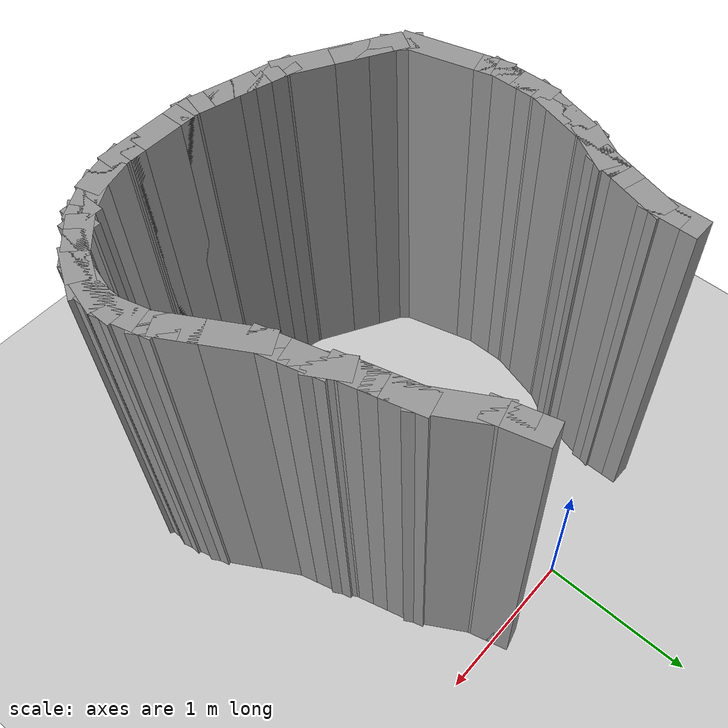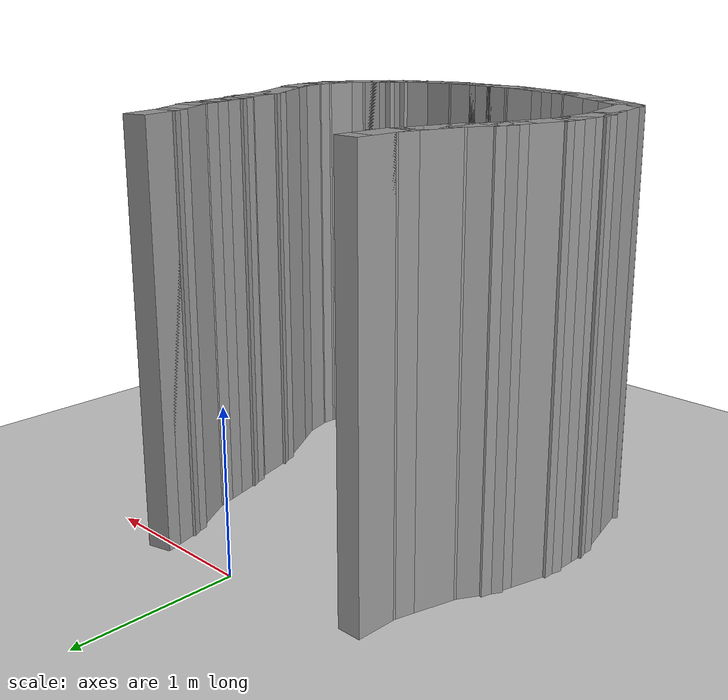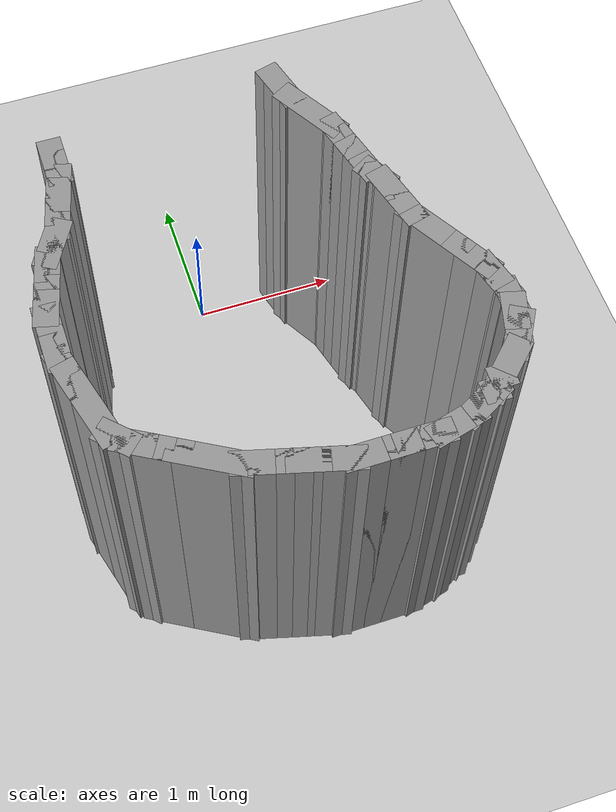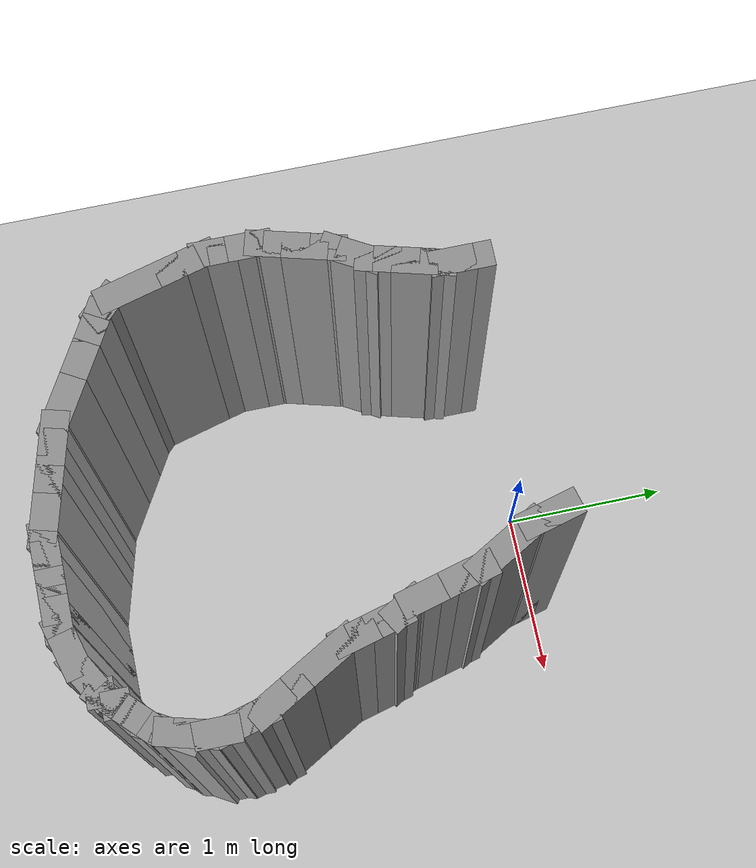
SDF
<sdf version="1.7">
 <world name="default">
  <model name="ground_plane">
   <static>1</static>
   <link name="link">
    <collision name="collision">
     <geometry><plane><normal>0 0 1</normal><size>100 100</size></plane></geometry>
     <surface>
      <contact><collide_bitmask>65535</collide_bitmask></contact>
      <friction><ode><mu>100</mu><mu2>50</mu2></ode></friction>
     </surface>
    </collision>
    <visual name="visual">
     <cast_shadows>0</cast_shadows>
     <geometry><plane><normal>0 0 1</normal><size>100 100</size></plane></geometry>
     <material>
      <script><uri>file://media/materials/scripts/gazebo.material</uri><name>Gazebo/Grey</name></script>
     </material>
    </visual>
   </link>
  </model>
  <model name="spoll2">
   <pose>1.26645 -0.043503 0 0 -0 0</pose>
   <link name="Wall_236">
    <collision name="Wall_236_Collision">
     <geometry><box><size>0.25 0.15 2.5</size></box></geometry>
     <pose>0 0 1.25 0 -0 0</pose>
    </collision>
    <visual name="Wall_236_Visual">
     <pose>0 0 1.25 0 -0 0</pose>
     <geometry><box><size>0.25 0.15 2.5</size></box></geometry>
     <material>
      <script><uri>file://media/materials/scripts/gazebo.material</uri><name>Gazebo/Grey</name></script>
      <ambient>1 1 1 1</ambient>
     </material>
     <meta><layer>0</layer></meta>
    </visual>
    <pose>-2.14212 -0.14047 0 0 -0 -1.5708</pose>
   </link>
   <link name="Wall_237">
    <collision name="Wall_237_Collision">
     <geometry><box><size>0.25 0.15 2.5</size></box></geometry>
     <pose>0 0 1.25 0 -0 0</pose>
    </collision>
    <visual name="Wall_237_Visual">
     <pose>0 0 1.25 0 -0 0</pose>
     <geometry><box><size>0.25 0.15 2.5</size></box></geometry>
     <material>
      <script><uri>file://media/materials/scripts/gazebo.material</uri><name>Gazebo/Grey</name></script>
      <ambient>1 1 1 1</ambient>
     </material>
     <meta><layer>0</layer></meta>
    </visual>
    <pose>-2.14212 -0.24047 0 0 -0 -1.5708</pose>
   </link>
   <link name="Wall_238">
    <collision name="Wall_238_Collision">
     <geometry><box><size>0.25 0.15 2.5</size></box></geometry>
     <pose>0 0 1.25 0 -0 0</pose>
    </collision>
    <visual name="Wall_238_Visual">
     <pose>0 0 1.25 0 -0 0</pose>
     <geometry><box><size>0.25 0.15 2.5</size></box></geometry>
     <material>
      <script><uri>file://media/materials/scripts/gazebo.material</uri><name>Gazebo/Grey</name></script>
      <ambient>1 1 1 1</ambient>
     </material>
     <meta><layer>0</layer></meta>
    </visual>
    <pose>-2.15506 -0.338766 0 0 -0 -1.8326</pose>
   </link>
   <link name="Wall_239">
    <collision name="Wall_239_Collision">
     <geometry><box><size>0.25 0.15 2.5</size></box></geometry>
     <pose>0 0 1.25 0 -0 0</pose>
    </collision>
    <visual name="Wall_239_Visual">
     <pose>0 0 1.25 0 -0 0</pose>
     <geometry><box><size>0.25 0.15 2.5</size></box></geometry>
     <material>
      <script><uri>file://media/materials/scripts/gazebo.material</uri><name>Gazebo/Grey</name></script>
      <ambient>1 1 1 1</ambient>
     </material>
     <meta><layer>0</layer></meta>
    </visual>
    <pose>-2.18094 -0.435359 0 0 -0 -1.8326</pose>
   </link>
   <link name="Wall_240">
    <collision name="Wall_240_Collision">
     <geometry><box><size>0.25 0.15 2.5</size></box></geometry>
     <pose>0 0 1.25 0 -0 0</pose>
    </collision>
    <visual name="Wall_240_Visual">
     <pose>0 0 1.25 0 -0 0</pose>
     <geometry><box><size>0.25 0.15 2.5</size></box></geometry>
     <material>
      <script><uri>file://media/materials/scripts/gazebo.material</uri><name>Gazebo/Grey</name></script>
      <ambient>1 1 1 1</ambient>
     </material>
     <meta><layer>0</layer></meta>
    </visual>
    <pose>-2.20683 -0.531951 0 0 -0 -1.8326</pose>
   </link>
   <link name="Wall_241">
    <collision name="Wall_241_Collision">
     <geometry><box><size>0.25 0.15 2.5</size></box></geometry>
     <pose>0 0 1.25 0 -0 0</pose>
    </collision>
    <visual name="Wall_241_Visual">
     <pose>0 0 1.25 0 -0 0</pose>
     <geometry><box><size>0.25 0.15 2.5</size></box></geometry>
     <material>
      <script><uri>file://media/materials/scripts/gazebo.material</uri><name>Gazebo/Grey</name></script>
      <ambient>1 1 1 1</ambient>
     </material>
     <meta><layer>0</layer></meta>
    </visual>
    <pose>-2.23271 -0.628544 0 0 -0 -1.8326</pose>
   </link>
   <link name="Wall_242">
    <collision name="Wall_242_Collision">
     <geometry><box><size>0.25 0.15 2.5</size></box></geometry>
     <pose>0 0 1.25 0 -0 0</pose>
    </collision>
    <visual name="Wall_242_Visual">
     <pose>0 0 1.25 0 -0 0</pose>
     <geometry><box><size>0.25 0.15 2.5</size></box></geometry>
     <material>
      <script><uri>file://media/materials/scripts/gazebo.material</uri><name>Gazebo/Grey</name></script>
      <ambient>1 1 1 1</ambient>
     </material>
     <meta><layer>0</layer></meta>
    </visual>
    <pose>-2.27065 -0.720141 0 0 -0 -2.0944</pose>
   </link>
   <link name="Wall_243">
    <collision name="Wall_243_Collision">
     <geometry><box><size>0.25 0.15 2.5</size></box></geometry>
     <pose>0 0 1.25 0 -0 0</pose>
    </collision>
    <visual name="Wall_243_Visual">
     <pose>0 0 1.25 0 -0 0</pose>
     <geometry><box><size>0.25 0.15 2.5</size></box></geometry>
     <material>
      <script><uri>file://media/materials/scripts/gazebo.material</uri><name>Gazebo/Grey</name></script>
      <ambient>1 1 1 1</ambient>
     </material>
     <meta><layer>0</layer></meta>
    </visual>
    <pose>-2.32065 -0.806744 0 0 -0 -2.0944</pose>
   </link>
   <link name="Wall_244">
    <collision name="Wall_244_Collision">
     <geometry><box><size>0.25 0.15 2.5</size></box></geometry>
     <pose>0 0 1.25 0 -0 0</pose>
    </collision>
    <visual name="Wall_244_Visual">
     <pose>0 0 1.25 0 -0 0</pose>
     <geometry><box><size>0.25 0.15 2.5</size></box></geometry>
     <material>
      <script><uri>file://media/materials/scripts/gazebo.material</uri><name>Gazebo/Grey</name></script>
      <ambient>1 1 1 1</ambient>
     </material>
     <meta><layer>0</layer></meta>
    </visual>
    <pose>-2.35859 -0.898342 0 0 -0 -1.8326</pose>
   </link>
   <link name="Wall_245">
    <collision name="Wall_245_Collision">
     <geometry><box><size>0.25 0.15 2.5</size></box></geometry>
     <pose>0 0 1.25 0 -0 0</pose>
    </collision>
    <visual name="Wall_245_Visual">
     <pose>0 0 1.25 0 -0 0</pose>
     <geometry><box><size>0.25 0.15 2.5</size></box></geometry>
     <material>
      <script><uri>file://media/materials/scripts/gazebo.material</uri><name>Gazebo/Grey</name></script>
      <ambient>1 1 1 1</ambient>
     </material>
     <meta><layer>0</layer></meta>
    </visual>
    <pose>-2.38447 -0.994934 0 0 -0 -1.8326</pose>
   </link>
   <link name="Wall_246">
    <collision name="Wall_246_Collision">
     <geometry><box><size>0.25 0.15 2.5</size></box></geometry>
     <pose>0 0 1.25 0 -0 0</pose>
    </collision>
    <visual name="Wall_246_Visual">
     <pose>0 0 1.25 0 -0 0</pose>
     <geometry><box><size>0.25 0.15 2.5</size></box></geometry>
     <material>
      <script><uri>file://media/materials/scripts/gazebo.material</uri><name>Gazebo/Grey</name></script>
      <ambient>1 1 1 1</ambient>
     </material>
     <meta><layer>0</layer></meta>
    </visual>
    <pose>-2.41036 -1.09153 0 0 -0 -1.8326</pose>
   </link>
   <link name="Wall_247">
    <collision name="Wall_247_Collision">
     <geometry><box><size>0.25 0.15 2.5</size></box></geometry>
     <pose>0 0 1.25 0 -0 0</pose>
    </collision>
    <visual name="Wall_247_Visual">
     <pose>0 0 1.25 0 -0 0</pose>
     <geometry><box><size>0.25 0.15 2.5</size></box></geometry>
     <material>
      <script><uri>file://media/materials/scripts/gazebo.material</uri><name>Gazebo/Grey</name></script>
      <ambient>1 1 1 1</ambient>
     </material>
     <meta><layer>0</layer></meta>
    </visual>
    <pose>-2.43624 -1.18812 0 0 -0 -1.8326</pose>
   </link>
   <link name="Wall_248">
    <collision name="Wall_248_Collision">
     <geometry><box><size>0.25 0.15 2.5</size></box></geometry>
     <pose>0 0 1.25 0 -0 0</pose>
    </collision>
    <visual name="Wall_248_Visual">
     <pose>0 0 1.25 0 -0 0</pose>
     <geometry><box><size>0.25 0.15 2.5</size></box></geometry>
     <material>
      <script><uri>file://media/materials/scripts/gazebo.material</uri><name>Gazebo/Grey</name></script>
      <ambient>1 1 1 1</ambient>
     </material>
     <meta><layer>0</layer></meta>
    </visual>
    <pose>-2.44918 -1.28642 0 0 -0 -1.5708</pose>
   </link>
   <link name="Wall_249">
    <collision name="Wall_249_Collision">
     <geometry><box><size>0.25 0.15 2.5</size></box></geometry>
     <pose>0 0 1.25 0 -0 0</pose>
    </collision>
    <visual name="Wall_249_Visual">
     <pose>0 0 1.25 0 -0 0</pose>
     <geometry><box><size>0.25 0.15 2.5</size></box></geometry>
     <material>
      <script><uri>file://media/materials/scripts/gazebo.material</uri><name>Gazebo/Grey</name></script>
      <ambient>1 1 1 1</ambient>
     </material>
     <meta><layer>0</layer></meta>
    </visual>
    <pose>-2.44918 -1.38642 0 0 -0 -1.5708</pose>
   </link>
   <link name="Wall_250">
    <collision name="Wall_250_Collision">
     <geometry><box><size>0.25 0.15 2.5</size></box></geometry>
     <pose>0 0 1.25 0 -0 0</pose>
    </collision>
    <visual name="Wall_250_Visual">
     <pose>0 0 1.25 0 -0 0</pose>
     <geometry><box><size>0.25 0.15 2.5</size></box></geometry>
     <material>
      <script><uri>file://media/materials/scripts/gazebo.material</uri><name>Gazebo/Grey</name></script>
      <ambient>1 1 1 1</ambient>
     </material>
     <meta><layer>0</layer></meta>
    </visual>
    <pose>-2.44918 -1.48642 0 0 -0 -1.5708</pose>
   </link>
   <link name="Wall_251">
    <collision name="Wall_251_Collision">
     <geometry><box><size>0.25 0.15 2.5</size></box></geometry>
     <pose>0 0 1.25 0 -0 0</pose>
    </collision>
    <visual name="Wall_251_Visual">
     <pose>0 0 1.25 0 -0 0</pose>
     <geometry><box><size>0.25 0.15 2.5</size></box></geometry>
     <material>
      <script><uri>file://media/materials/scripts/gazebo.material</uri><name>Gazebo/Grey</name></script>
      <ambient>1 1 1 1</ambient>
     </material>
     <meta><layer>0</layer></meta>
    </visual>
    <pose>-2.43624 -1.58471 0 0 -0 -1.309</pose>
   </link>
   <link name="Wall_252">
    <collision name="Wall_252_Collision">
     <geometry><box><size>0.25 0.15 2.5</size></box></geometry>
     <pose>0 0 1.25 0 -0 0</pose>
    </collision>
    <visual name="Wall_252_Visual">
     <pose>0 0 1.25 0 -0 0</pose>
     <geometry><box><size>0.25 0.15 2.5</size></box></geometry>
     <material>
      <script><uri>file://media/materials/scripts/gazebo.material</uri><name>Gazebo/Grey</name></script>
      <ambient>1 1 1 1</ambient>
     </material>
     <meta><layer>0</layer></meta>
    </visual>
    <pose>-2.41036 -1.68131 0 0 -0 -1.309</pose>
   </link>
   <link name="Wall_253">
    <collision name="Wall_253_Collision">
     <geometry><box><size>0.5 0.15 2.5</size></box></geometry>
     <pose>0 0 1.25 0 -0 0</pose>
    </collision>
    <visual name="Wall_253_Visual">
     <pose>0 0 1.25 0 -0 0</pose>
     <geometry><box><size>0.5 0.15 2.5</size></box></geometry>
     <material>
      <script><uri>file://media/materials/scripts/gazebo.material</uri><name>Gazebo/Grey</name></script>
      <ambient>1 1 1 1</ambient>
     </material>
     <meta><layer>0</layer></meta>
    </visual>
    <pose>-2.35212 -1.89864 0 0 -0 -1.309</pose>
   </link>
   <link name="Wall_265">
    <collision name="Wall_265_Collision">
     <geometry><box><size>0.25 0.15 2.5</size></box></geometry>
     <pose>0 0 1.25 0 -0 0</pose>
    </collision>
    <visual name="Wall_265_Visual">
     <pose>0 0 1.25 0 -0 0</pose>
     <geometry><box><size>0.25 0.15 2.5</size></box></geometry>
     <material>
      <script><uri>file://media/materials/scripts/gazebo.material</uri><name>Gazebo/Grey</name></script>
      <ambient>1 1 1 1</ambient>
     </material>
     <meta><layer>0</layer></meta>
    </visual>
    <pose>-2.27147 -2.10303 0 0 -0 -0.785398</pose>
   </link>
   <link name="Wall_266">
    <collision name="Wall_266_Collision">
     <geometry><box><size>0.25 0.15 2.5</size></box></geometry>
     <pose>0 0 1.25 0 -0 0</pose>
    </collision>
    <visual name="Wall_266_Visual">
     <pose>0 0 1.25 0 -0 0</pose>
     <geometry><box><size>0.25 0.15 2.5</size></box></geometry>
     <material>
      <script><uri>file://media/materials/scripts/gazebo.material</uri><name>Gazebo/Grey</name></script>
      <ambient>1 1 1 1</ambient>
     </material>
     <meta><layer>0</layer></meta>
    </visual>
    <pose>-2.19281 -2.16338 0 0 -0 -0.523599</pose>
   </link>
   <link name="Wall_267">
    <collision name="Wall_267_Collision">
     <geometry><box><size>0.25 0.15 2.5</size></box></geometry>
     <pose>0 0 1.25 0 -0 0</pose>
    </collision>
    <visual name="Wall_267_Visual">
     <pose>0 0 1.25 0 -0 0</pose>
     <geometry><box><size>0.25 0.15 2.5</size></box></geometry>
     <material>
      <script><uri>file://media/materials/scripts/gazebo.material</uri><name>Gazebo/Grey</name></script>
      <ambient>1 1 1 1</ambient>
     </material>
     <meta><layer>0</layer></meta>
    </visual>
    <pose>-2.10621 -2.21339 0 0 -0 -0.523599</pose>
   </link>
   <link name="Wall_268">
    <collision name="Wall_268_Collision">
     <geometry><box><size>0.25 0.15 2.5</size></box></geometry>
     <pose>0 0 1.25 0 -0 0</pose>
    </collision>
    <visual name="Wall_268_Visual">
     <pose>0 0 1.25 0 -0 0</pose>
     <geometry><box><size>0.25 0.15 2.5</size></box></geometry>
     <material>
      <script><uri>file://media/materials/scripts/gazebo.material</uri><name>Gazebo/Grey</name></script>
      <ambient>1 1 1 1</ambient>
     </material>
     <meta><layer>0</layer></meta>
    </visual>
    <pose>-2.01961 -2.26338 0 0 -0 -0.523599</pose>
   </link>
   <link name="Wall_269">
    <collision name="Wall_269_Collision">
     <geometry><box><size>0.5 0.15 2.5</size></box></geometry>
     <pose>0 0 1.25 0 -0 0</pose>
    </collision>
    <visual name="Wall_269_Visual">
     <pose>0 0 1.25 0 -0 0</pose>
     <geometry><box><size>0.5 0.15 2.5</size></box></geometry>
     <material>
      <script><uri>file://media/materials/scripts/gazebo.material</uri><name>Gazebo/Grey</name></script>
      <ambient>1 1 1 1</ambient>
     </material>
     <meta><layer>0</layer></meta>
    </visual>
    <pose>-1.82475 -2.37589 0 0 -0 -0.523599</pose>
   </link>
   <link name="Wall_270">
    <collision name="Wall_270_Collision">
     <geometry><box><size>0.25 0.15 2.5</size></box></geometry>
     <pose>0 0 1.25 0 -0 0</pose>
    </collision>
    <visual name="Wall_270_Visual">
     <pose>0 0 1.25 0 -0 0</pose>
     <geometry><box><size>0.25 0.15 2.5</size></box></geometry>
     <material>
      <script><uri>file://media/materials/scripts/gazebo.material</uri><name>Gazebo/Grey</name></script>
      <ambient>1 1 1 1</ambient>
     </material>
     <meta><layer>0</layer></meta>
    </visual>
    <pose>-1.6249 -2.47633 0 0 -0 -0.261799</pose>
   </link>
   <link name="Wall_271">
    <collision name="Wall_271_Collision">
     <geometry><box><size>0.25 0.15 2.5</size></box></geometry>
     <pose>0 0 1.25 0 -0 0</pose>
    </collision>
    <visual name="Wall_271_Visual">
     <pose>0 0 1.25 0 -0 0</pose>
     <geometry><box><size>0.25 0.15 2.5</size></box></geometry>
     <material>
      <script><uri>file://media/materials/scripts/gazebo.material</uri><name>Gazebo/Grey</name></script>
      <ambient>1 1 1 1</ambient>
     </material>
     <meta><layer>0</layer></meta>
    </visual>
    <pose>-1.52831 -2.50221 0 0 -0 -0.261799</pose>
   </link>
   <link name="Wall_272">
    <collision name="Wall_272_Collision">
     <geometry><box><size>0.25 0.15 2.5</size></box></geometry>
     <pose>0 0 1.25 0 -0 0</pose>
    </collision>
    <visual name="Wall_272_Visual">
     <pose>0 0 1.25 0 -0 0</pose>
     <geometry><box><size>0.25 0.15 2.5</size></box></geometry>
     <material>
      <script><uri>file://media/materials/scripts/gazebo.material</uri><name>Gazebo/Grey</name></script>
      <ambient>1 1 1 1</ambient>
     </material>
     <meta><layer>0</layer></meta>
    </visual>
    <pose>-1.43172 -2.52809 0 0 -0 -0.261799</pose>
   </link>
   <link name="Wall_273">
    <collision name="Wall_273_Collision">
     <geometry><box><size>0.25 0.15 2.5</size></box></geometry>
     <pose>0 0 1.25 0 -0 0</pose>
    </collision>
    <visual name="Wall_273_Visual">
     <pose>0 0 1.25 0 -0 0</pose>
     <geometry><box><size>0.25 0.15 2.5</size></box></geometry>
     <material>
      <script><uri>file://media/materials/scripts/gazebo.material</uri><name>Gazebo/Grey</name></script>
      <ambient>1 1 1 1</ambient>
     </material>
     <meta><layer>0</layer></meta>
    </visual>
    <pose>-1.33513 -2.55397 0 0 -0 -0.261799</pose>
   </link>
   <link name="Wall_274">
    <collision name="Wall_274_Collision">
     <geometry><box><size>0.25 0.15 2.5</size></box></geometry>
     <pose>0 0 1.25 0 -0 0</pose>
    </collision>
    <visual name="Wall_274_Visual">
     <pose>0 0 1.25 0 -0 0</pose>
     <geometry><box><size>0.25 0.15 2.5</size></box></geometry>
     <material>
      <script><uri>file://media/materials/scripts/gazebo.material</uri><name>Gazebo/Grey</name></script>
      <ambient>1 1 1 1</ambient>
     </material>
     <meta><layer>0</layer></meta>
    </visual>
    <pose>-1.23853 -2.57985 0 0 -0 -0.261799</pose>
   </link>
   <link name="Wall_275">
    <collision name="Wall_275_Collision">
     <geometry><box><size>0.25 0.15 2.5</size></box></geometry>
     <pose>0 0 1.25 0 -0 0</pose>
    </collision>
    <visual name="Wall_275_Visual">
     <pose>0 0 1.25 0 -0 0</pose>
     <geometry><box><size>0.25 0.15 2.5</size></box></geometry>
     <material>
      <script><uri>file://media/materials/scripts/gazebo.material</uri><name>Gazebo/Grey</name></script>
      <ambient>1 1 1 1</ambient>
     </material>
     <meta><layer>0</layer></meta>
    </visual>
    <pose>-1.14194 -2.60574 0 0 -0 -0.261799</pose>
   </link>
   <link name="Wall_276">
    <collision name="Wall_276_Collision">
     <geometry><box><size>0.25 0.15 2.5</size></box></geometry>
     <pose>0 0 1.25 0 -0 0</pose>
    </collision>
    <visual name="Wall_276_Visual">
     <pose>0 0 1.25 0 -0 0</pose>
     <geometry><box><size>0.25 0.15 2.5</size></box></geometry>
     <material>
      <script><uri>file://media/materials/scripts/gazebo.material</uri><name>Gazebo/Grey</name></script>
      <ambient>1 1 1 1</ambient>
     </material>
     <meta><layer>0</layer></meta>
    </visual>
    <pose>-1.04364 -2.61868 0 0 -0 0</pose>
   </link>
   <link name="Wall_277">
    <collision name="Wall_277_Collision">
     <geometry><box><size>0.25 0.15 2.5</size></box></geometry>
     <pose>0 0 1.25 0 -0 0</pose>
    </collision>
    <visual name="Wall_277_Visual">
     <pose>0 0 1.25 0 -0 0</pose>
     <geometry><box><size>0.25 0.15 2.5</size></box></geometry>
     <material>
      <script><uri>file://media/materials/scripts/gazebo.material</uri><name>Gazebo/Grey</name></script>
      <ambient>1 1 1 1</ambient>
     </material>
     <meta><layer>0</layer></meta>
    </visual>
    <pose>-0.943645 -2.61868 0 0 -0 0</pose>
   </link>
   <link name="Wall_278">
    <collision name="Wall_278_Collision">
     <geometry><box><size>0.25 0.15 2.5</size></box></geometry>
     <pose>0 0 1.25 0 -0 0</pose>
    </collision>
    <visual name="Wall_278_Visual">
     <pose>0 0 1.25 0 -0 0</pose>
     <geometry><box><size>0.25 0.15 2.5</size></box></geometry>
     <material>
      <script><uri>file://media/materials/scripts/gazebo.material</uri><name>Gazebo/Grey</name></script>
      <ambient>1 1 1 1</ambient>
     </material>
     <meta><layer>0</layer></meta>
    </visual>
    <pose>-0.843645 -2.61868 0 0 -0 0</pose>
   </link>
   <link name="Wall_279">
    <collision name="Wall_279_Collision">
     <geometry><box><size>0.25 0.15 2.5</size></box></geometry>
     <pose>0 0 1.25 0 -0 0</pose>
    </collision>
    <visual name="Wall_279_Visual">
     <pose>0 0 1.25 0 -0 0</pose>
     <geometry><box><size>0.25 0.15 2.5</size></box></geometry>
     <material>
      <script><uri>file://media/materials/scripts/gazebo.material</uri><name>Gazebo/Grey</name></script>
      <ambient>1 1 1 1</ambient>
     </material>
     <meta><layer>0</layer></meta>
    </visual>
    <pose>-0.743644 -2.61868 0 0 -0 0</pose>
   </link>
   <link name="Wall_280">
    <collision name="Wall_280_Collision">
     <geometry><box><size>0.25 0.15 2.5</size></box></geometry>
     <pose>0 0 1.25 0 -0 0</pose>
    </collision>
    <visual name="Wall_280_Visual">
     <pose>0 0 1.25 0 -0 0</pose>
     <geometry><box><size>0.25 0.15 2.5</size></box></geometry>
     <material>
      <script><uri>file://media/materials/scripts/gazebo.material</uri><name>Gazebo/Grey</name></script>
      <ambient>1 1 1 1</ambient>
     </material>
     <meta><layer>0</layer></meta>
    </visual>
    <pose>-0.643645 -2.61868 0 0 -0 0</pose>
   </link>
   <link name="Wall_281">
    <collision name="Wall_281_Collision">
     <geometry><box><size>0.25 0.15 2.5</size></box></geometry>
     <pose>0 0 1.25 0 -0 0</pose>
    </collision>
    <visual name="Wall_281_Visual">
     <pose>0 0 1.25 0 -0 0</pose>
     <geometry><box><size>0.25 0.15 2.5</size></box></geometry>
     <material>
      <script><uri>file://media/materials/scripts/gazebo.material</uri><name>Gazebo/Grey</name></script>
      <ambient>1 1 1 1</ambient>
     </material>
     <meta><layer>0</layer></meta>
    </visual>
    <pose>-0.545348 -2.60574 0 0 -0 0.261799</pose>
   </link>
   <link name="Wall_282">
    <collision name="Wall_282_Collision">
     <geometry><box><size>0.25 0.15 2.5</size></box></geometry>
     <pose>0 0 1.25 0 -0 0</pose>
    </collision>
    <visual name="Wall_282_Visual">
     <pose>0 0 1.25 0 -0 0</pose>
     <geometry><box><size>0.25 0.15 2.5</size></box></geometry>
     <material>
      <script><uri>file://media/materials/scripts/gazebo.material</uri><name>Gazebo/Grey</name></script>
      <ambient>1 1 1 1</ambient>
     </material>
     <meta><layer>0</layer></meta>
    </visual>
    <pose>-0.448756 -2.57985 0 0 -0 0.261799</pose>
   </link>
   <link name="Wall_283">
    <collision name="Wall_283_Collision">
     <geometry><box><size>0.25 0.15 2.5</size></box></geometry>
     <pose>0 0 1.25 0 -0 0</pose>
    </collision>
    <visual name="Wall_283_Visual">
     <pose>0 0 1.25 0 -0 0</pose>
     <geometry><box><size>0.25 0.15 2.5</size></box></geometry>
     <material>
      <script><uri>file://media/materials/scripts/gazebo.material</uri><name>Gazebo/Grey</name></script>
      <ambient>1 1 1 1</ambient>
     </material>
     <meta><layer>0</layer></meta>
    </visual>
    <pose>-0.357158 -2.54191 0 0 -0 0.523599</pose>
   </link>
   <link name="Wall_284">
    <collision name="Wall_284_Collision">
     <geometry><box><size>0.25 0.15 2.5</size></box></geometry>
     <pose>0 0 1.25 0 -0 0</pose>
    </collision>
    <visual name="Wall_284_Visual">
     <pose>0 0 1.25 0 -0 0</pose>
     <geometry><box><size>0.25 0.15 2.5</size></box></geometry>
     <material>
      <script><uri>file://media/materials/scripts/gazebo.material</uri><name>Gazebo/Grey</name></script>
      <ambient>1 1 1 1</ambient>
     </material>
     <meta><layer>0</layer></meta>
    </visual>
    <pose>-0.270555 -2.49191 0 0 -0 0.523599</pose>
   </link>
   <link name="Wall_285">
    <collision name="Wall_285_Collision">
     <geometry><box><size>0.15 0.15 2.5</size></box></geometry>
     <pose>0 0 1.25 0 -0 0</pose>
    </collision>
    <visual name="Wall_285_Visual">
     <pose>0 0 1.25 0 -0 0</pose>
     <geometry><box><size>0.15 0.15 2.5</size></box></geometry>
     <material>
      <script><uri>file://media/materials/scripts/gazebo.material</uri><name>Gazebo/Grey</name></script>
      <ambient>1 1 1 1</ambient>
     </material>
     <meta><layer>0</layer></meta>
    </visual>
    <pose>-0.227254 -2.46691 0 0 -0 0</pose>
   </link>
   <link name="Wall_286">
    <collision name="Wall_286_Collision">
     <geometry><box><size>0.25 0.15 2.5</size></box></geometry>
     <pose>0 0 1.25 0 -0 0</pose>
    </collision>
    <visual name="Wall_286_Visual">
     <pose>0 0 1.25 0 -0 0</pose>
     <geometry><box><size>0.25 0.15 2.5</size></box></geometry>
     <material>
      <script><uri>file://media/materials/scripts/gazebo.material</uri><name>Gazebo/Grey</name></script>
      <ambient>1 1 1 1</ambient>
     </material>
     <meta><layer>0</layer></meta>
    </visual>
    <pose>-0.191899 -2.43156 0 0 -0 0.785398</pose>
   </link>
   <link name="Wall_287">
    <collision name="Wall_287_Collision">
     <geometry><box><size>0.15 0.15 2.5</size></box></geometry>
     <pose>0 0 1.25 0 -0 0</pose>
    </collision>
    <visual name="Wall_287_Visual">
     <pose>0 0 1.25 0 -0 0</pose>
     <geometry><box><size>0.15 0.15 2.5</size></box></geometry>
     <material>
      <script><uri>file://media/materials/scripts/gazebo.material</uri><name>Gazebo/Grey</name></script>
      <ambient>1 1 1 1</ambient>
     </material>
     <meta><layer>0</layer></meta>
    </visual>
    <pose>-0.156543 -2.3962 0 0 -0 0</pose>
   </link>
   <link name="Wall_288">
    <collision name="Wall_288_Collision">
     <geometry><box><size>0.25 0.15 2.5</size></box></geometry>
     <pose>0 0 1.25 0 -0 0</pose>
    </collision>
    <visual name="Wall_288_Visual">
     <pose>0 0 1.25 0 -0 0</pose>
     <geometry><box><size>0.25 0.15 2.5</size></box></geometry>
     <material>
      <script><uri>file://media/materials/scripts/gazebo.material</uri><name>Gazebo/Grey</name></script>
      <ambient>1 1 1 1</ambient>
     </material>
     <meta><layer>0</layer></meta>
    </visual>
    <pose>-0.121188 -2.36085 0 0 -0 0.785398</pose>
   </link>
   <link name="Wall_289">
    <collision name="Wall_289_Collision">
     <geometry><box><size>0.25 0.15 2.5</size></box></geometry>
     <pose>0 0 1.25 0 -0 0</pose>
    </collision>
    <visual name="Wall_289_Visual">
     <pose>0 0 1.25 0 -0 0</pose>
     <geometry><box><size>0.25 0.15 2.5</size></box></geometry>
     <material>
      <script><uri>file://media/materials/scripts/gazebo.material</uri><name>Gazebo/Grey</name></script>
      <ambient>1 1 1 1</ambient>
     </material>
     <meta><layer>0</layer></meta>
    </visual>
    <pose>-0.050478 -2.29014 0 0 -0 0.785398</pose>
   </link>
   <link name="Wall_290">
    <collision name="Wall_290_Collision">
     <geometry><box><size>0.25 0.15 2.5</size></box></geometry>
     <pose>0 0 1.25 0 -0 0</pose>
    </collision>
    <visual name="Wall_290_Visual">
     <pose>0 0 1.25 0 -0 0</pose>
     <geometry><box><size>0.25 0.15 2.5</size></box></geometry>
     <material>
      <script><uri>file://media/materials/scripts/gazebo.material</uri><name>Gazebo/Grey</name></script>
      <ambient>1 1 1 1</ambient>
     </material>
     <meta><layer>0</layer></meta>
    </visual>
    <pose>0.009878 -2.21148 0 0 -0 1.0472</pose>
   </link>
   <link name="Wall_291">
    <collision name="Wall_291_Collision">
     <geometry><box><size>0.25 0.15 2.5</size></box></geometry>
     <pose>0 0 1.25 0 -0 0</pose>
    </collision>
    <visual name="Wall_291_Visual">
     <pose>0 0 1.25 0 -0 0</pose>
     <geometry><box><size>0.25 0.15 2.5</size></box></geometry>
     <material>
      <script><uri>file://media/materials/scripts/gazebo.material</uri><name>Gazebo/Grey</name></script>
      <ambient>1 1 1 1</ambient>
     </material>
     <meta><layer>0</layer></meta>
    </visual>
    <pose>0.059878 -2.12488 0 0 -0 1.0472</pose>
   </link>
   <link name="Wall_297">
    <collision name="Wall_297_Collision">
     <geometry><box><size>0.25 0.15 2.5</size></box></geometry>
     <pose>0 0 1.25 0 -0 0</pose>
    </collision>
    <visual name="Wall_297_Visual">
     <pose>0 0 1.25 0 -0 0</pose>
     <geometry><box><size>0.25 0.15 2.5</size></box></geometry>
     <material>
      <script><uri>file://media/materials/scripts/gazebo.material</uri><name>Gazebo/Grey</name></script>
      <ambient>1 1 1 1</ambient>
     </material>
     <meta><layer>0</layer></meta>
    </visual>
    <pose>0.047819 -2.11988 0 0 -0 1.309</pose>
   </link>
   <link name="Wall_298">
    <collision name="Wall_298_Collision">
     <geometry><box><size>0.25 0.15 2.5</size></box></geometry>
     <pose>0 0 1.25 0 -0 0</pose>
    </collision>
    <visual name="Wall_298_Visual">
     <pose>0 0 1.25 0 -0 0</pose>
     <geometry><box><size>0.25 0.15 2.5</size></box></geometry>
     <material>
      <script><uri>file://media/materials/scripts/gazebo.material</uri><name>Gazebo/Grey</name></script>
      <ambient>1 1 1 1</ambient>
     </material>
     <meta><layer>0</layer></meta>
    </visual>
    <pose>0.073701 -2.02329 0 0 -0 1.309</pose>
   </link>
   <link name="Wall_299">
    <collision name="Wall_299_Collision">
     <geometry><box><size>0.25 0.15 2.5</size></box></geometry>
     <pose>0 0 1.25 0 -0 0</pose>
    </collision>
    <visual name="Wall_299_Visual">
     <pose>0 0 1.25 0 -0 0</pose>
     <geometry><box><size>0.25 0.15 2.5</size></box></geometry>
     <material>
      <script><uri>file://media/materials/scripts/gazebo.material</uri><name>Gazebo/Grey</name></script>
      <ambient>1 1 1 1</ambient>
     </material>
     <meta><layer>0</layer></meta>
    </visual>
    <pose>0.086642 -1.92499 0 0 -0 1.5708</pose>
   </link>
   <link name="Wall_300">
    <collision name="Wall_300_Collision">
     <geometry><box><size>0.25 0.15 2.5</size></box></geometry>
     <pose>0 0 1.25 0 -0 0</pose>
    </collision>
    <visual name="Wall_300_Visual">
     <pose>0 0 1.25 0 -0 0</pose>
     <geometry><box><size>0.25 0.15 2.5</size></box></geometry>
     <material>
      <script><uri>file://media/materials/scripts/gazebo.material</uri><name>Gazebo/Grey</name></script>
      <ambient>1 1 1 1</ambient>
     </material>
     <meta><layer>0</layer></meta>
    </visual>
    <pose>0.073701 -1.8267 0 0 -0 1.8326</pose>
   </link>
   <link name="Wall_301">
    <collision name="Wall_301_Collision">
     <geometry><box><size>0.25 0.15 2.5</size></box></geometry>
     <pose>0 0 1.25 0 -0 0</pose>
    </collision>
    <visual name="Wall_301_Visual">
     <pose>0 0 1.25 0 -0 0</pose>
     <geometry><box><size>0.25 0.15 2.5</size></box></geometry>
     <material>
      <script><uri>file://media/materials/scripts/gazebo.material</uri><name>Gazebo/Grey</name></script>
      <ambient>1 1 1 1</ambient>
     </material>
     <meta><layer>0</layer></meta>
    </visual>
    <pose>0.047819 -1.73011 0 0 -0 1.8326</pose>
   </link>
   <link name="Wall_302">
    <collision name="Wall_302_Collision">
     <geometry><box><size>0.25 0.15 2.5</size></box></geometry>
     <pose>0 0 1.25 0 -0 0</pose>
    </collision>
    <visual name="Wall_302_Visual">
     <pose>0 0 1.25 0 -0 0</pose>
     <geometry><box><size>0.25 0.15 2.5</size></box></geometry>
     <material>
      <script><uri>file://media/materials/scripts/gazebo.material</uri><name>Gazebo/Grey</name></script>
      <ambient>1 1 1 1</ambient>
     </material>
     <meta><layer>0</layer></meta>
    </visual>
    <pose>0.009878 -1.63851 0 0 -0 2.0944</pose>
   </link>
   <link name="Wall_303">
    <collision name="Wall_303_Collision">
     <geometry><box><size>0.25 0.15 2.5</size></box></geometry>
     <pose>0 0 1.25 0 -0 0</pose>
    </collision>
    <visual name="Wall_303_Visual">
     <pose>0 0 1.25 0 -0 0</pose>
     <geometry><box><size>0.25 0.15 2.5</size></box></geometry>
     <material>
      <script><uri>file://media/materials/scripts/gazebo.material</uri><name>Gazebo/Grey</name></script>
      <ambient>1 1 1 1</ambient>
     </material>
     <meta><layer>0</layer></meta>
    </visual>
    <pose>-0.040122 -1.5519 0 0 -0 2.0944</pose>
   </link>
   <link name="Wall_304">
    <collision name="Wall_304_Collision">
     <geometry><box><size>0.5 0.15 2.5</size></box></geometry>
     <pose>0 0 1.25 0 -0 0</pose>
    </collision>
    <visual name="Wall_304_Visual">
     <pose>0 0 1.25 0 -0 0</pose>
     <geometry><box><size>0.5 0.15 2.5</size></box></geometry>
     <material>
      <script><uri>file://media/materials/scripts/gazebo.material</uri><name>Gazebo/Grey</name></script>
      <ambient>1 1 1 1</ambient>
     </material>
     <meta><layer>0</layer></meta>
    </visual>
    <pose>-0.152622 -1.35705 0 0 -0 2.0944</pose>
   </link>
   <link name="Wall_305">
    <collision name="Wall_305_Collision">
     <geometry><box><size>0.25 0.15 2.5</size></box></geometry>
     <pose>0 0 1.25 0 -0 0</pose>
    </collision>
    <visual name="Wall_305_Visual">
     <pose>0 0 1.25 0 -0 0</pose>
     <geometry><box><size>0.25 0.15 2.5</size></box></geometry>
     <material>
      <script><uri>file://media/materials/scripts/gazebo.material</uri><name>Gazebo/Grey</name></script>
      <ambient>1 1 1 1</ambient>
     </material>
     <meta><layer>0</layer></meta>
    </visual>
    <pose>-0.253063 -1.1572 0 0 -0 1.8326</pose>
   </link>
   <link name="Wall_306">
    <collision name="Wall_306_Collision">
     <geometry><box><size>0.25 0.15 2.5</size></box></geometry>
     <pose>0 0 1.25 0 -0 0</pose>
    </collision>
    <visual name="Wall_306_Visual">
     <pose>0 0 1.25 0 -0 0</pose>
     <geometry><box><size>0.25 0.15 2.5</size></box></geometry>
     <material>
      <script><uri>file://media/materials/scripts/gazebo.material</uri><name>Gazebo/Grey</name></script>
      <ambient>1 1 1 1</ambient>
     </material>
     <meta><layer>0</layer></meta>
    </visual>
    <pose>-0.278945 -1.06061 0 0 -0 1.8326</pose>
   </link>
   <link name="Wall_307">
    <collision name="Wall_307_Collision">
     <geometry><box><size>0.25 0.15 2.5</size></box></geometry>
     <pose>0 0 1.25 0 -0 0</pose>
    </collision>
    <visual name="Wall_307_Visual">
     <pose>0 0 1.25 0 -0 0</pose>
     <geometry><box><size>0.25 0.15 2.5</size></box></geometry>
     <material>
      <script><uri>file://media/materials/scripts/gazebo.material</uri><name>Gazebo/Grey</name></script>
      <ambient>1 1 1 1</ambient>
     </material>
     <meta><layer>0</layer></meta>
    </visual>
    <pose>-0.304827 -0.964013 0 0 -0 1.8326</pose>
   </link>
   <link name="Wall_308">
    <collision name="Wall_308_Collision">
     <geometry><box><size>0.25 0.15 2.5</size></box></geometry>
     <pose>0 0 1.25 0 -0 0</pose>
    </collision>
    <visual name="Wall_308_Visual">
     <pose>0 0 1.25 0 -0 0</pose>
     <geometry><box><size>0.25 0.15 2.5</size></box></geometry>
     <material>
      <script><uri>file://media/materials/scripts/gazebo.material</uri><name>Gazebo/Grey</name></script>
      <ambient>1 1 1 1</ambient>
     </material>
     <meta><layer>0</layer></meta>
    </visual>
    <pose>-0.342768 -0.872415 0 0 -0 2.0944</pose>
   </link>
   <link name="Wall_309">
    <collision name="Wall_309_Collision">
     <geometry><box><size>0.25 0.15 2.5</size></box></geometry>
     <pose>0 0 1.25 0 -0 0</pose>
    </collision>
    <visual name="Wall_309_Visual">
     <pose>0 0 1.25 0 -0 0</pose>
     <geometry><box><size>0.25 0.15 2.5</size></box></geometry>
     <material>
      <script><uri>file://media/materials/scripts/gazebo.material</uri><name>Gazebo/Grey</name></script>
      <ambient>1 1 1 1</ambient>
     </material>
     <meta><layer>0</layer></meta>
    </visual>
    <pose>-0.380709 -0.780818 0 0 -0 1.8326</pose>
   </link>
   <link name="Wall_310">
    <collision name="Wall_310_Collision">
     <geometry><box><size>0.25 0.15 2.5</size></box></geometry>
     <pose>0 0 1.25 0 -0 0</pose>
    </collision>
    <visual name="Wall_310_Visual">
     <pose>0 0 1.25 0 -0 0</pose>
     <geometry><box><size>0.25 0.15 2.5</size></box></geometry>
     <material>
      <script><uri>file://media/materials/scripts/gazebo.material</uri><name>Gazebo/Grey</name></script>
      <ambient>1 1 1 1</ambient>
     </material>
     <meta><layer>0</layer></meta>
    </visual>
    <pose>-0.406591 -0.684225 0 0 -0 1.8326</pose>
   </link>
   <link name="Wall_311">
    <collision name="Wall_311_Collision">
     <geometry><box><size>0.25 0.15 2.5</size></box></geometry>
     <pose>0 0 1.25 0 -0 0</pose>
    </collision>
    <visual name="Wall_311_Visual">
     <pose>0 0 1.25 0 -0 0</pose>
     <geometry><box><size>0.25 0.15 2.5</size></box></geometry>
     <material>
      <script><uri>file://media/materials/scripts/gazebo.material</uri><name>Gazebo/Grey</name></script>
      <ambient>1 1 1 1</ambient>
     </material>
     <meta><layer>0</layer></meta>
    </visual>
    <pose>-0.432473 -0.587632 0 0 -0 1.8326</pose>
   </link>
   <link name="Wall_312">
    <collision name="Wall_312_Collision">
     <geometry><box><size>0.25 0.15 2.5</size></box></geometry>
     <pose>0 0 1.25 0 -0 0</pose>
    </collision>
    <visual name="Wall_312_Visual">
     <pose>0 0 1.25 0 -0 0</pose>
     <geometry><box><size>0.25 0.15 2.5</size></box></geometry>
     <material>
      <script><uri>file://media/materials/scripts/gazebo.material</uri><name>Gazebo/Grey</name></script>
      <ambient>1 1 1 1</ambient>
     </material>
     <meta><layer>0</layer></meta>
    </visual>
    <pose>-0.458355 -0.49104 0 0 -0 1.8326</pose>
   </link>
   <link name="Wall_313">
    <collision name="Wall_313_Collision">
     <geometry><box><size>0.5 0.15 2.5</size></box></geometry>
     <pose>0 0 1.25 0 -0 0</pose>
    </collision>
    <visual name="Wall_313_Visual">
     <pose>0 0 1.25 0 -0 0</pose>
     <geometry><box><size>0.5 0.15 2.5</size></box></geometry>
     <material>
      <script><uri>file://media/materials/scripts/gazebo.material</uri><name>Gazebo/Grey</name></script>
      <ambient>1 1 1 1</ambient>
     </material>
     <meta><layer>0</layer></meta>
    </visual>
    <pose>-0.558795 -0.291189 0 0 -0 2.0944</pose>
   </link>
   <link name="Wall_314">
    <collision name="Wall_314_Collision">
     <geometry><box><size>0.25 0.15 2.5</size></box></geometry>
     <pose>0 0 1.25 0 -0 0</pose>
    </collision>
    <visual name="Wall_314_Visual">
     <pose>0 0 1.25 0 -0 0</pose>
     <geometry><box><size>0.25 0.15 2.5</size></box></geometry>
     <material>
      <script><uri>file://media/materials/scripts/gazebo.material</uri><name>Gazebo/Grey</name></script>
      <ambient>1 1 1 1</ambient>
     </material>
     <meta><layer>0</layer></meta>
    </visual>
    <pose>-0.659236 -0.091338 0 0 -0 1.8326</pose>
   </link>
   <link name="Wall_315">
    <collision name="Wall_315_Collision">
     <geometry><box><size>0.25 0.15 2.5</size></box></geometry>
     <pose>0 0 1.25 0 -0 0</pose>
    </collision>
    <visual name="Wall_315_Visual">
     <pose>0 0 1.25 0 -0 0</pose>
     <geometry><box><size>0.25 0.15 2.5</size></box></geometry>
     <material>
      <script><uri>file://media/materials/scripts/gazebo.material</uri><name>Gazebo/Grey</name></script>
      <ambient>1 1 1 1</ambient>
     </material>
     <meta><layer>0</layer></meta>
    </visual>
    <pose>-0.685118 0.005254 0 0 -0 1.8326</pose>
   </link>
   <static>1</static>
  </model>
 </world>
</sdf>
